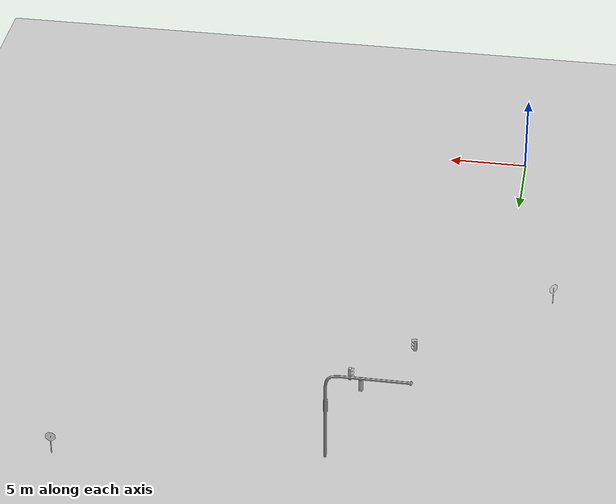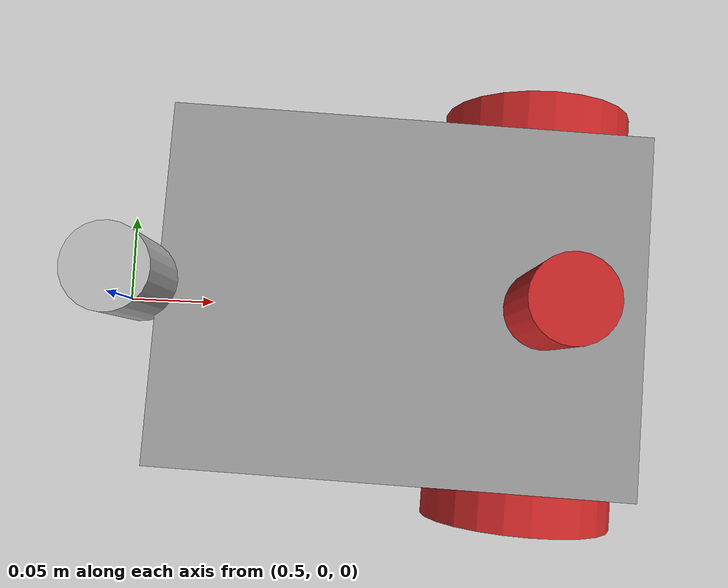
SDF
<sdf version="1.6">
 <world name="default">
  <light name="sun" type="directional">
   <pose>0 0 10 0 -0 0</pose>
   <diffuse>0.8 0.8 0.8 1</diffuse>
   <specular>0.2 0.2 0.2 1</specular>
   <attenuation>
    <range>1000</range>
    <constant>0.9</constant>
    <linear>0.01</linear>
    <quadratic>0.001</quadratic>
   </attenuation>
   <direction>-0.5 0.1 -0.9</direction>
  </light>
  <model name="ground_plane">
   <static>1</static>
   <link name="link">
    <collision name="collision">
     <geometry><plane><normal>0 0 1</normal><size>100 100</size></plane></geometry>
     <surface>
      <contact><collide_bitmask>65535</collide_bitmask></contact>
      <friction><ode><mu>100</mu><mu2>50</mu2></ode></friction>
     </surface>
    </collision>
    <visual name="visual">
     <cast_shadows>0</cast_shadows>
     <geometry><plane><normal>0 0 1</normal><size>100 100</size></plane></geometry>
     <material>
      <script><uri>file://media/materials/scripts/gazebo.material</uri><name>Gazebo/Grey</name></script>
     </material>
    </visual>
   </link>
  </model>
  <gravity>0 0 -9.8</gravity>
  <magnetic_field>6e-06 2.3e-05 -4.2e-05</magnetic_field>
  <atmosphere type="adiabatic"/>
  <physics name="default_physics" default="0" type="ode">
   <max_step_size>0.001</max_step_size>
   <real_time_factor>1</real_time_factor>
   <real_time_update_rate>1000</real_time_update_rate>
  </physics>
  <scene><ambient>0.4 0.4 0.4 1</ambient><background>0.7 0.7 0.7 1</background><shadows>1</shadows></scene>
  <audio><device>default</device></audio>
  <spherical_coordinates>
   <surface_model>EARTH_WGS84</surface_model>
   <latitude_deg>0</latitude_deg>
   <longitude_deg>0</longitude_deg>
   <elevation>0</elevation>
   <heading_deg>0</heading_deg>
  </spherical_coordinates>
  <model name="dtw_robot1">
   <link name="base_link">
    <inertial>
     <pose>-0.07 0 0.07 0 -0 0</pose>
     <mass>1</mass>
     <inertia><ixx>0.001</ixx><ixy>0</ixy><ixz>0</ixz><iyy>0.001</iyy><iyz>0</iyz><izz>0.001</izz></inertia>
    </inertial>
    <collision name="base_link_fixed_joint_lump__ball_link_collision">
     <pose>-0.14 0 0.04 0 -0 0</pose>
     <geometry><sphere><radius>0.04</radius></sphere></geometry>
     <surface><friction><ode><mu>0.5</mu><mu2>0.5</mu2></ode></friction></surface>
    </collision>
    <collision name="base_link_fixed_joint_lump__body_link_collision_1">
     <pose>-0.07 0 0.07 0 -0 0</pose>
     <geometry><box><size>0.24 0.178 0.06</size></box></geometry>
    </collision>
    <collision name="base_link_fixed_joint_lump__front_laser_link_collision_2">
     <pose>0 0 0.13 0 -0 0</pose>
     <geometry><cylinder><length>0.06</length><radius>0.02</radius></cylinder></geometry>
    </collision>
    <collision name="base_link_fixed_joint_lump__sonar_back_link_collision_3">
     <pose>-0.2 0 0.12 0 -0 3.1415</pose>
     <geometry><cylinder><length>0.06</length><radius>0.02</radius></cylinder></geometry>
    </collision>
    <visual name="base_link_fixed_joint_lump__ball_link_visual">
     <pose>-0.14 0 0.04 0 -0 0</pose>
     <geometry><sphere><radius>0.04</radius></sphere></geometry>
     <material>
      <script><name>Gazebo/Gray</name><uri>file://media/materials/scripts/gazebo.material</uri></script>
     </material>
    </visual>
    <visual name="base_link_fixed_joint_lump__body_link_visual_1">
     <pose>-0.07 0 0.07 0 -0 0</pose>
     <geometry><box><size>0.24 0.18 0.06</size></box></geometry>
     <material>
      <script><name>Gazebo/Gray</name><uri>file://media/materials/scripts/gazebo.material</uri></script>
     </material>
    </visual>
    <visual name="base_link_fixed_joint_lump__front_laser_link_visual_2">
     <pose>0 0 0.13 0 -0 0</pose>
     <geometry><cylinder><length>0.06</length><radius>0.02</radius></cylinder></geometry>
     <material>
      <script><name>Gazebo/Red</name><uri>file://media/materials/scripts/gazebo.material</uri></script>
     </material>
    </visual>
    <visual name="base_link_fixed_joint_lump__sonar_back_link_visual_3">
     <pose>-0.2 0 0.12 0 -0 3.1415</pose>
     <geometry><cylinder><length>0.06</length><radius>0.02</radius></cylinder></geometry>
     <material><script><uri>__default__</uri><name>__default__</name></script></material>
    </visual>
    <sensor name="front_laser" type="ray">
     <visualize>0</visualize>
     <update_rate>10</update_rate>
     <ray>
      <scan>
       <horizontal>
        <samples>400</samples>
        <resolution>1</resolution>
        <min_angle>-2.61799</min_angle>
        <max_angle>2.61799</max_angle>
       </horizontal>
       <vertical><samples>1</samples><min_angle>0</min_angle><max_angle>0</max_angle></vertical>
      </scan>
      <range><min>0.1</min><max>20</max><resolution>0.01</resolution></range>
      <noise><type>gaussian</type><mean>0</mean><stddev>0.01</stddev></noise>
     </ray>
     <plugin name="gazebo_ros_lidar_controller" filename="libgazebo_ros_laser.so">
      <topicName>front_laser/scan</topicName>
      <frameName>front_laser_link</frameName>
      <robotNamespace>/dtw_robot1/</robotNamespace>
     </plugin>
     <pose>0 0 0.13 0 -0 0</pose>
    </sensor>
    <sensor name="head_camera" type="camera">
     <update_rate>10</update_rate>
     <camera name="head_camera">
      <pose>0 0 0 -1.57079 -1.57079 3.14159</pose>
      <horizontal_fov>1.39626</horizontal_fov>
      <image><width>800</width><height>600</height><format>R8G8B8</format></image>
      <clip><near>0.02</near><far>300</far></clip>
      <noise><type>gaussian</type><mean>0</mean><stddev>0.007</stddev></noise>
     </camera>
     <plugin name="camera_controller" filename="libgazebo_ros_camera.so">
      <alwaysOn>1</alwaysOn>
      <updateRate>0.0</updateRate>
      <cameraName>head_camera</cameraName>
      <imageTopicName>image_raw</imageTopicName>
      <cameraInfoTopicName>camera_info</cameraInfoTopicName>
      <frameName>head_camera_link</frameName>
      <hackBaseline>0.07</hackBaseline>
      <distortionK1>0.0</distortionK1>
      <distortionK2>0.0</distortionK2>
      <distortionK3>0.0</distortionK3>
      <distortionT1>0.0</distortionT1>
      <distortionT2>0.0</distortionT2>
      <robotNamespace>/dtw_robot1/</robotNamespace>
     </plugin>
     <pose>0.1 0 0.08 -1.5708 -0 -1.5708</pose>
    </sensor>
    <sensor name="imu_sensor" type="imu">
     <always_on>1</always_on>
     <update_rate>100</update_rate>
     <visualize>1</visualize>
     <topic>data</topic>
     <plugin name="imu_plugin" filename="libgazebo_ros_imu_sensor.so">
      <topicName>imu/data</topicName>
      <bodyName>imu_link</bodyName>
      <updateRateHZ>10.0</updateRateHZ>
      <gaussianNoise>0.0</gaussianNoise>
      <xyzOffset>0 0 0</xyzOffset>
      <rpyOffset>0 0 0</rpyOffset>
      <frameName>dtw_robot1/imu_link</frameName>
      <robotNamespace>/dtw_robot1/</robotNamespace>
     </plugin>
     <pose>-0.05 0 0.1 0 -0 0</pose>
    </sensor>
    <sensor name="sonar" type="ray">
     <update_rate>20</update_rate>
     <ray>
      <scan>
       <horizontal>
        <samples>3</samples>
        <resolution>1</resolution>
        <min_angle>-0.05</min_angle>
        <max_angle>0.05</max_angle>
       </horizontal>
       <vertical>
        <samples>3</samples>
        <resolution>1</resolution>
        <min_angle>-0.05</min_angle>
        <max_angle>0.05</max_angle>
       </vertical>
      </scan>
      <range><min>0.03</min><max>2</max><resolution>0.02</resolution></range>
     </ray>
     <plugin name="gazebo_ros_range" filename="libgazebo_ros_range.so">
      <gaussianNoise>0.005</gaussianNoise>
      <alwaysOn>1</alwaysOn>
      <updateRate>10</updateRate>
      <topicName>sonar_back/range</topicName>
      <frameName>dtw_robot1/sonar_back_link</frameName>
      <radiation>ULTRASOUND</radiation>
      <fov>0.1</fov>
      <robotNamespace>/dtw_robot1/</robotNamespace>
     </plugin>
     <pose>-0.2 0 0.12 0 -0 3.1415</pose>
    </sensor>
   </link>
   <link name="left_wheel_link">
    <pose>0 0.1 0.05 -1.5708 0 0</pose>
    <inertial>
     <mass>0.1</mass>
     <inertia><ixx>0.0001</ixx><ixy>0</ixy><ixz>0</ixz><iyy>0.0001</iyy><iyz>0</iyz><izz>0.0001</izz></inertia>
    </inertial>
    <collision name="left_wheel_link_collision">
     <geometry><cylinder><length>0.02</length><radius>0.05</radius></cylinder></geometry>
     <surface>
      <contact><ode><kp>50000</kp><kd>10</kd></ode></contact>
      <friction><ode><mu>2.5</mu><mu2>2.5</mu2></ode></friction>
     </surface>
    </collision>
    <visual name="left_wheel_link_visual">
     <geometry><cylinder><length>0.02</length><radius>0.05</radius></cylinder></geometry>
     <material>
      <script><name>Gazebo/Red</name><uri>file://media/materials/scripts/gazebo.material</uri></script>
     </material>
    </visual>
   </link>
   <joint name="left_wheel_joint" type="revolute">
    <child>left_wheel_link</child>
    <parent>base_link</parent>
    <axis>
     <xyz>0 1 0</xyz>
     <limit><lower>-1e+16</lower><upper>1e+16</upper></limit>
     <dynamics>
      <damping>0.1</damping>
      <friction>0</friction>
      <spring_reference>0</spring_reference>
      <spring_stiffness>0</spring_stiffness>
     </dynamics>
     <use_parent_model_frame>1</use_parent_model_frame>
    </axis>
   </joint>
   <link name="right_wheel_link">
    <pose>0 -0.1 0.05 -1.5708 0 0</pose>
    <inertial>
     <mass>0.1</mass>
     <inertia><ixx>0.0001</ixx><ixy>0</ixy><ixz>0</ixz><iyy>0.0001</iyy><iyz>0</iyz><izz>0.0001</izz></inertia>
    </inertial>
    <collision name="right_wheel_link_collision">
     <geometry><cylinder><length>0.02</length><radius>0.05</radius></cylinder></geometry>
     <surface>
      <contact><ode><kp>50000</kp><kd>10</kd></ode></contact>
      <friction><ode><mu>2.5</mu><mu2>2.5</mu2></ode></friction>
     </surface>
    </collision>
    <visual name="right_wheel_link_visual">
     <geometry><cylinder><length>0.02</length><radius>0.05</radius></cylinder></geometry>
     <material>
      <script><name>Gazebo/Red</name><uri>file://media/materials/scripts/gazebo.material</uri></script>
     </material>
    </visual>
   </link>
   <joint name="right_wheel_joint" type="revolute">
    <child>right_wheel_link</child>
    <parent>base_link</parent>
    <axis>
     <xyz>0 1 0</xyz>
     <limit><lower>-1e+16</lower><upper>1e+16</upper></limit>
     <dynamics>
      <damping>0.1</damping>
      <friction>0</friction>
      <spring_reference>0</spring_reference>
      <spring_stiffness>0</spring_stiffness>
     </dynamics>
     <use_parent_model_frame>1</use_parent_model_frame>
    </axis>
   </joint>
   <static>0</static>
   <plugin name="gazebo_ros_control" filename="libgazebo_ros_control.so">
    <robotNamespace>dtw_robot1</robotNamespace>
    <robotSimType>gazebo_ros_control/DefaultRobotHWSim</robotSimType>
    <legacyModeNS>1</legacyModeNS>
   </plugin>
   <pose>0.731477 -0.004412 -0.0001 5e-06 0.000717 -0.032445</pose>
  </model>
  <model name="Stop Sign">
   <static>1</static>
   <link name="link">
    <collision name="collision">
     <geometry><mesh><uri>model://stop_sign/meshes/stop_sign.dae</uri></mesh></geometry>
    </collision>
    <visual name="visual">
     <geometry><mesh><uri>model://stop_sign/meshes/stop_sign.dae</uri></mesh></geometry>
     <material>
      <script>
       <uri>model://stop_sign/materials/scripts</uri>
       <uri>model://stop_sign/materials/textures</uri>
       <name>StopSign/Diffuse</name>
      </script>
     </material>
    </visual>
   </link>
   <pose>-2.95775 15.2261 -0.442375 0 -0 0.744013</pose>
  </model>
  <model name="stop_light">
   <static>1</static>
   <pose>4.66559 22.7745 1.91875 0 -0 1.57632</pose>
   <link name="link">
    <collision name="collision">
     <geometry>
      <mesh><uri>model://stop_light/meshes/stop_light.obj</uri><scale>0.01 0.01 0.01</scale></mesh>
     </geometry>
    </collision>
    <visual name="frame">
     <geometry>
      <mesh><uri>model://stop_light/meshes/stop_light.obj</uri><scale>0.01 0.01 0.01</scale></mesh>
     </geometry>
    </visual>
    <visual name="red">
     <pose>-0.001123 -0.082251 -0.147514 0 -0 0</pose>
     <geometry><sphere><radius>0.1012</radius></sphere></geometry>
     <material>
      <script>
       <uri>model://stop_light/materials/scripts/</uri>
       <uri>model://stop_light/materials/textures/</uri>
       <name>StopLight/Light</name>
      </script>
      <ambient>1 0 0 1</ambient>
      <specular>1 0 0 1</specular>
      <emissive>1 0 0 1</emissive>
     </material>
    </visual>
    <visual name="yellow">
     <pose>-0.001123 -0.082251 -0.402 0 -0 0</pose>
     <geometry><sphere><radius>0.1012</radius></sphere></geometry>
     <material>
      <script>
       <uri>model://stop_light/materials/scripts/</uri>
       <uri>model://stop_light/materials/textures/</uri>
       <name>StopLight/Light</name>
      </script>
      <ambient>1 1 0 1</ambient>
      <specular>1 1 0 1</specular>
     </material>
    </visual>
    <visual name="green">
     <pose>-0.001123 -0.082251 -0.655 0 -0 0</pose>
     <geometry><sphere><radius>0.1012</radius></sphere></geometry>
     <material>
      <script>
       <uri>model://stop_light/materials/scripts/</uri>
       <uri>model://stop_light/materials/textures/</uri>
       <name>StopLight/Light</name>
      </script>
      <ambient>0 1 0 1</ambient>
      <specular>0 1 0 1</specular>
      <emissive>1 0 0 1</emissive>
     </material>
    </visual>
   </link>
  </model>
  <model name="stop_light_0">
   <static>1</static>
   <pose>8.22526 25.9871 1.8297 0 0 -1.51991</pose>
   <link name="link">
    <collision name="collision">
     <geometry>
      <mesh><uri>model://stop_light/meshes/stop_light.obj</uri><scale>0.01 0.01 0.01</scale></mesh>
     </geometry>
    </collision>
    <visual name="frame">
     <geometry>
      <mesh><uri>model://stop_light/meshes/stop_light.obj</uri><scale>0.01 0.01 0.01</scale></mesh>
     </geometry>
    </visual>
    <visual name="red">
     <pose>-0.001123 -0.082251 -0.147514 0 -0 0</pose>
     <geometry><sphere><radius>0.1012</radius></sphere></geometry>
     <material>
      <script>
       <uri>model://stop_light/materials/scripts/</uri>
       <uri>model://stop_light/materials/textures/</uri>
       <name>StopLight/Light</name>
      </script>
      <ambient>1 0 0 1</ambient>
      <specular>1 0 0 1</specular>
      <emissive>1 0 0 1</emissive>
     </material>
    </visual>
    <visual name="yellow">
     <pose>-0.001123 -0.082251 -0.402 0 -0 0</pose>
     <geometry><sphere><radius>0.1012</radius></sphere></geometry>
     <material>
      <script>
       <uri>model://stop_light/materials/scripts/</uri>
       <uri>model://stop_light/materials/textures/</uri>
       <name>StopLight/Light</name>
      </script>
      <ambient>1 1 0 1</ambient>
      <specular>1 1 0 1</specular>
     </material>
    </visual>
    <visual name="green">
     <pose>-0.001123 -0.082251 -0.655 0 -0 0</pose>
     <geometry><sphere><radius>0.1012</radius></sphere></geometry>
     <material>
      <script>
       <uri>model://stop_light/materials/scripts/</uri>
       <uri>model://stop_light/materials/textures/</uri>
       <name>StopLight/Light</name>
      </script>
      <ambient>0 1 0 1</ambient>
      <specular>0 1 0 1</specular>
     </material>
    </visual>
   </link>
  </model>
  <model name="stop_light_post">
   <static>1</static>
   <link name="link">
    <collision name="post">
     <geometry>
      <mesh><uri>model://stop_light_post/meshes/stop_light_post.obj</uri><scale>0.01 0.01 0.01</scale></mesh>
     </geometry>
    </collision>
    <visual name="post">
     <geometry>
      <mesh><uri>model://stop_light_post/meshes/stop_light_post.obj</uri><scale>0.01 0.01 0.01</scale></mesh>
     </geometry>
    </visual>
   </link>
   <static>1</static>
   <link name="right_light::link">
    <collision name="collision">
     <geometry>
      <mesh><uri>model://stop_light/meshes/stop_light.obj</uri><scale>0.01 0.01 0.01</scale></mesh>
     </geometry>
    </collision>
    <visual name="frame">
     <geometry>
      <mesh><uri>model://stop_light/meshes/stop_light.obj</uri><scale>0.01 0.01 0.01</scale></mesh>
     </geometry>
    </visual>
    <visual name="red">
     <pose>-0.001123 -0.082251 -0.147514 0 -0 0</pose>
     <geometry><sphere><radius>0.1012</radius></sphere></geometry>
     <material>
      <script>
       <uri>model://stop_light/materials/scripts/</uri>
       <uri>model://stop_light/materials/textures/</uri>
       <name>StopLight/Light</name>
      </script>
      <ambient>1 0 0 1</ambient>
      <specular>1 0 0 1</specular>
      <emissive>1 0 0 1</emissive>
     </material>
    </visual>
    <visual name="yellow">
     <pose>-0.001123 -0.082251 -0.402 0 -0 0</pose>
     <geometry><sphere><radius>0.1012</radius></sphere></geometry>
     <material>
      <script>
       <uri>model://stop_light/materials/scripts/</uri>
       <uri>model://stop_light/materials/textures/</uri>
       <name>StopLight/Light</name>
      </script>
      <ambient>1 1 0 1</ambient>
      <specular>1 1 0 1</specular>
     </material>
    </visual>
    <visual name="green">
     <pose>-0.001123 -0.082251 -0.655 0 -0 0</pose>
     <geometry><sphere><radius>0.1012</radius></sphere></geometry>
     <material>
      <script>
       <uri>model://stop_light/materials/scripts/</uri>
       <uri>model://stop_light/materials/textures/</uri>
       <name>StopLight/Light</name>
      </script>
      <ambient>0 1 0 1</ambient>
      <specular>0 1 0 1</specular>
     </material>
    </visual>
    <pose>0 -0.05 4 0 -0 0</pose>
   </link>
   <static>1</static>
   <link name="center_light::link">
    <collision name="collision">
     <geometry>
      <mesh><uri>model://stop_light/meshes/stop_light.obj</uri><scale>0.01 0.01 0.01</scale></mesh>
     </geometry>
    </collision>
    <visual name="frame">
     <geometry>
      <mesh><uri>model://stop_light/meshes/stop_light.obj</uri><scale>0.01 0.01 0.01</scale></mesh>
     </geometry>
    </visual>
    <visual name="red">
     <pose>-0.001123 -0.082251 -0.147514 0 -0 0</pose>
     <geometry><sphere><radius>0.1012</radius></sphere></geometry>
     <material>
      <script>
       <uri>model://stop_light/materials/scripts/</uri>
       <uri>model://stop_light/materials/textures/</uri>
       <name>StopLight/Light</name>
      </script>
      <ambient>1 0 0 1</ambient>
      <specular>1 0 0 1</specular>
      <emissive>1 0 0 1</emissive>
     </material>
    </visual>
    <visual name="yellow">
     <pose>-0.001123 -0.082251 -0.402 0 -0 0</pose>
     <geometry><sphere><radius>0.1012</radius></sphere></geometry>
     <material>
      <script>
       <uri>model://stop_light/materials/scripts/</uri>
       <uri>model://stop_light/materials/textures/</uri>
       <name>StopLight/Light</name>
      </script>
      <ambient>1 1 0 1</ambient>
      <specular>1 1 0 1</specular>
     </material>
    </visual>
    <visual name="green">
     <pose>-0.001123 -0.082251 -0.655 0 -0 0</pose>
     <geometry><sphere><radius>0.1012</radius></sphere></geometry>
     <material>
      <script>
       <uri>model://stop_light/materials/scripts/</uri>
       <uri>model://stop_light/materials/textures/</uri>
       <name>StopLight/Light</name>
      </script>
      <ambient>0 1 0 1</ambient>
      <specular>0 1 0 1</specular>
     </material>
    </visual>
    <pose>-2 0.04 5.82 0 -0 0</pose>
   </link>
   <pose>8.75917 32.0067 0 0 -0 0</pose>
  </model>
  <model name="Stop Sign_0">
   <static>1</static>
   <link name="link">
    <collision name="collision">
     <geometry><mesh><uri>model://stop_sign/meshes/stop_sign.dae</uri></mesh></geometry>
    </collision>
    <visual name="visual">
     <geometry><mesh><uri>model://stop_sign/meshes/stop_sign.dae</uri></mesh></geometry>
     <material>
      <script>
       <uri>model://stop_sign/materials/scripts</uri>
       <uri>model://stop_sign/materials/textures</uri>
       <name>StopSign/Diffuse</name>
      </script>
     </material>
    </visual>
   </link>
   <pose>24.2264 33.9984 -0.379838 0 -0 0</pose>
  </model>
 </world>
</sdf>
